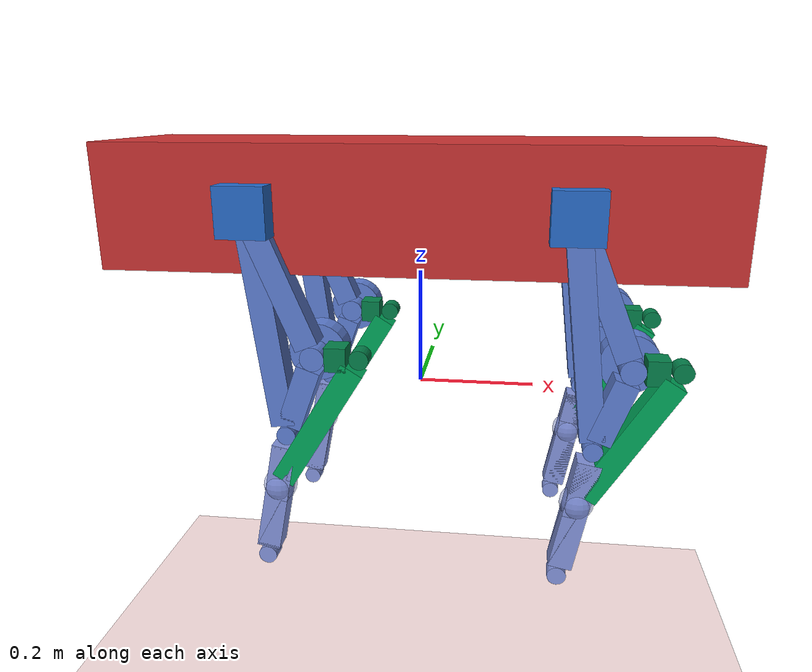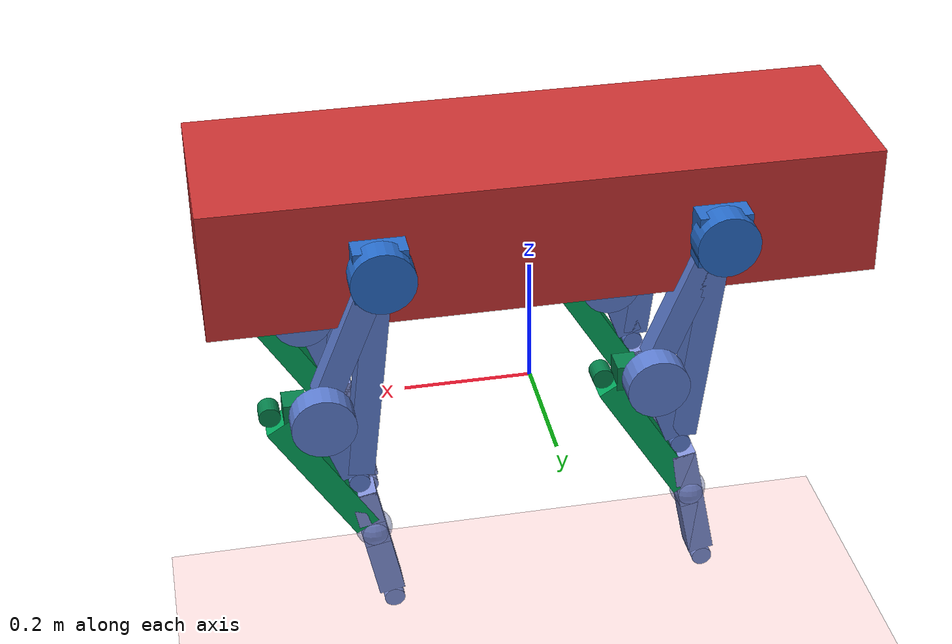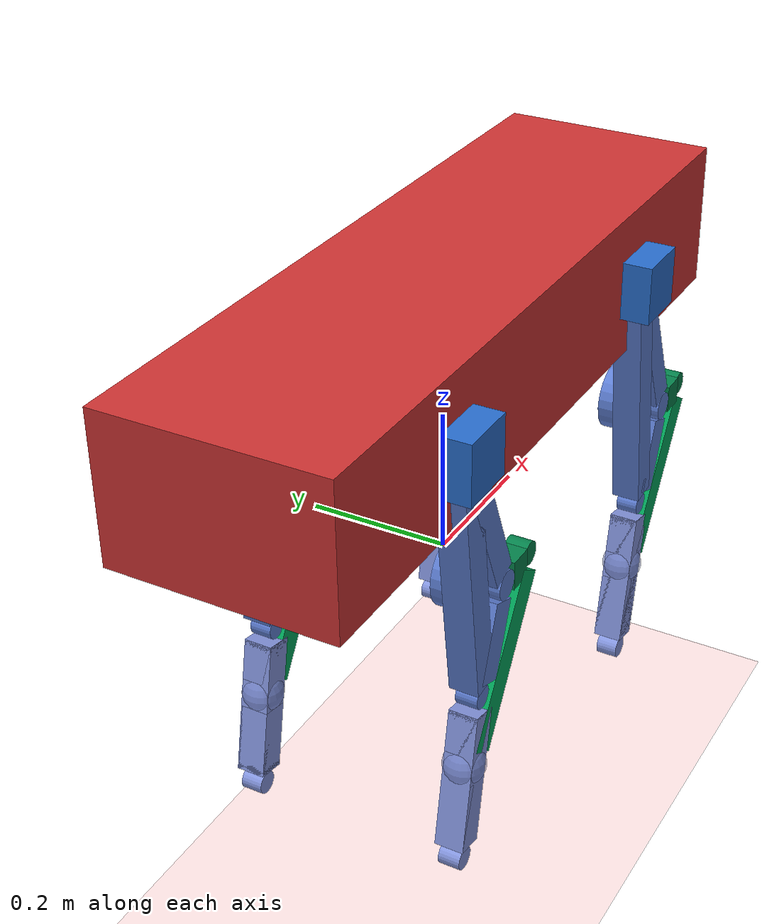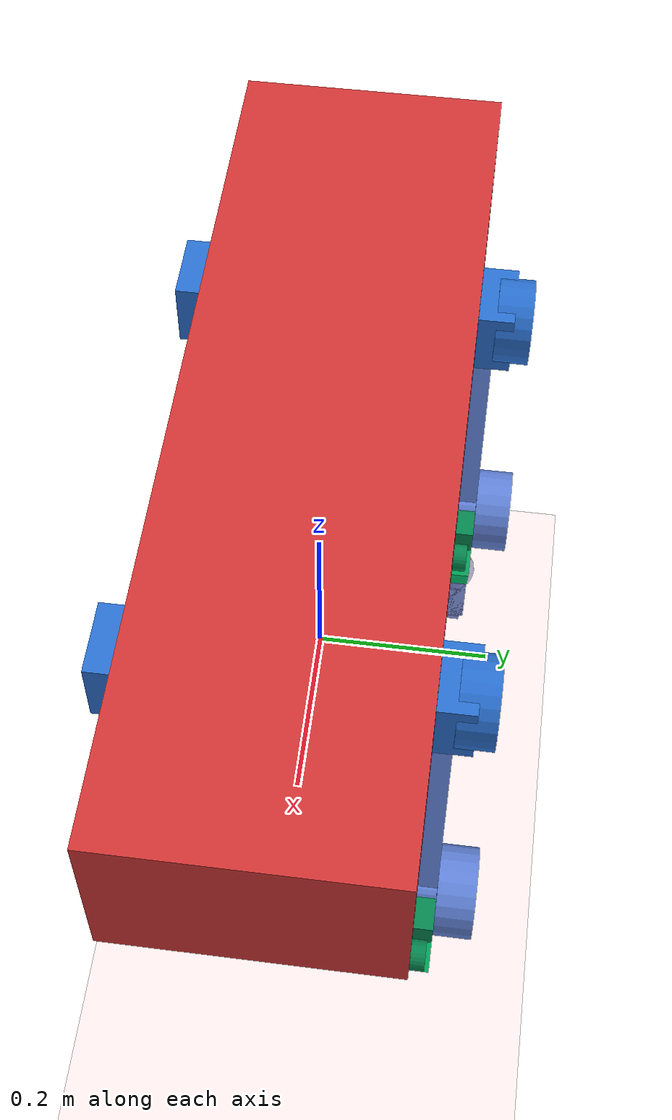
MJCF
<?xml version="1.0" encoding="utf-8"?>
<mujoco model="quadruped_torso">
  <compiler angle="radian" inertiafromgeom="true" coordinate="local" />
  <option timestep="0.01" gravity="0 0 -9.81" />
  <worldbody>
    <geom name="floor" type="plane" size="2 2 0.1" pos="0 0 -0.5" rgba="6 0.9 0.9 1" />
    <body name="torso" pos="0 0 0.32" quat="1 0 0 0">
      <geom name="torso_body" type="box" size="0.5 0.15 0.1" rgba="0.8 0.2 0.2 1" />
      <inertial pos="0 0 0" mass="2.0" diaginertia="0.1 0.2 0.1" />
      <body name="leg_front_right" pos="0.25 0.15 0">
        <geom name="G_vis0_front_right" type="box" rgba="0.1568627450980392 0.42745098039215684 0.8 1.0" contype="1" conaffinity="1" pos="0.0 0.0 0.0" quat="1.0 0.0 0.0 0.0" size="0.04 0.04 0.04" />
        <inertial pos="0.0 0.0 0.0" mass="0.08347399110019947" diaginertia="8.903892384021277e-05 8.903892384021277e-05 8.903892384021277e-05" />
        <body name="L3_front_right" pos="0.0 0.0 0.0" quat="0.06047668423188785 5.741713201658111e-17 0.998169610168691 5.741713201658111e-17">
          <joint name="Main_ground_front_right" type="hinge" axis="0 1 0" range="-3.141592653589793 3.141592653589793" damping="0.1" />
          <geom name="L3_vis0_front_right" type="box" rgba="0.37254901960784315 0.5019607843137255 0.8352941176470589 1.0" contype="1" conaffinity="1" pos="-0.0335453797116682 0.0 0.30749931402362507" quat="0.971927930023144 0.0 0.23527876835984662 0.0" size="0.019999999552965164 0.019999999552965164 0.053347601805225145" />
          <geom name="L3_vis1_front_right" type="box" rgba="0.37254901960784315 0.5019607843137255 0.8352941176470589 1.0" contype="1" conaffinity="1" pos="-0.03354537971166819 0.0 0.12113609340324624" quat="0.13466621351140315 5.242864835118275e-17 0.9908910186990804 5.242864835118275e-17" size="0.019999999552965164 0.019999999552965164 0.10569505056835027" />
          <geom name="L3_vis2_front_right" type="box" rgba="0.37254901960784315 0.5019607843137255 0.8352941176470589 1.0" contype="1" conaffinity="1" pos="-8.0396400129425e-18 0.0 0.18636322062037886" quat="1.0 0.0 0.0 0.0" size="0.019999999552965164 0.019999999552965164 0.1663632210674137" />
          <inertial pos="-0.02236 0.0 0.205" mass="0.7542480601566578" diaginertia="0.12500084161050556 0.12869753843871176 0.003897829635256627" />
          <body name="L4_front_right" pos="-1.6079280025885e-17 0.0 0.3727264412407577" quat="0.9876821263722173 0.0 0.15647369505720535 0.0">
            <joint name="Main_knee_front_right" type="hinge" axis="0 1 0" range="-3.141592653589793 3.141592653589793" damping="0.1" />
            <geom name="L4_vis0_front_right" type="box" rgba="0.5176470588235295 0.5843137254901961 0.8705882352941177 1.0" contype="1" conaffinity="1" pos="2.0816681711721685e-17 0.0 0.11718041645257968" quat="1.0 0.0 0.0 0.0" size="0.019999999552965164 0.019999999552965164 0.09718041689961451" />
            <geom name="L4_vis1_front_right" type="box" rgba="0.5176470588235295 0.5843137254901961 0.8705882352941177 1.0" contype="1" conaffinity="1" pos="3.469446951953614e-17 0.0 0.16639619136266312" quat="1.0 0.0 0.0 0.0" size="0.019999999552965164 0.019999999552965164 0.04796464198953107" />
            <geom name="L4_vis2_front_right" type="box" rgba="0.5176470588235295 0.5843137254901961 0.8705882352941177 1.0" contype="1" conaffinity="1" pos="1.3877787807814457e-17 0.0 0.04921577491008344" quat="1.0 0.0 0.0 0.0" size="0.019999999552965164 0.019999999552965164 0.02921577535711828" />
            <inertial pos="0.0 0.0 0.11093" mass="0.27110860821538063" diaginertia="0.09751211219620336 0.09769377780925784 0.00025396123848237884" />
            <body name="EE_front_right" pos="4.163336342344337e-17 0.0 0.23436083290515936" quat="0.09645554711881314 5.504063266352305e-17 0.9953372932981113 5.504063266352305e-17">
              <geom name="EE_vis0_front_right" type="sphere" rgba="0.6431372549019608 0.6666666666666666 0.9058823529411765 1.0" contype="1" conaffinity="1" pos="0.0 0.0 0.0" quat="1.0 0.0 0.0 0.0" size="0.002142857142857143" />
              <inertial pos="0.0 0.0 0.0" mass="2.979933439782622e-05" diaginertia="5.473347134294612e-11 5.473347134294612e-11 5.473347134294612e-11" />
            </body>
            <body name="Main_ee_L4Unit_front_right" pos="4.163336342344337e-17 0.0 0.23436083290515936" quat="0.06820437145077145 0.06820437145077136 0.7038097496589579 -0.703809749658958">
              <geom name="Main_ee_L4Unit_vis0_front_right" type="cylinder" rgba="0.5176470588235295 0.5843137254901961 0.8705882352941177 0.9" contype="1" conaffinity="1" size="0.016 0.015" />
              <inertial pos="0 0 0" mass="0.1" diaginertia="0.00065 0.00065 0.0008" />
            </body>
            <body name="Main_connection_2_L4Pseudo_front_right" pos="2.7755575615628914e-17 0.0 0.09843154982016689" quat="0.09645554711881314 5.504063266352305e-17 0.9953372932981113 5.504063266352305e-17">
              <joint name="Main_connection_2_L4_revolute_front_right" type="hinge" axis="0 1 0" range="-3.141592653589793 3.141592653589793" damping="0.1" />
              <geom name="Main_connection_2_L4Pseudo_vis0_front_right" type="sphere" rgba="0.5176470588235295 0.5843137254901961 0.8705882352941177 0.5" contype="1" conaffinity="1" size="0.02857142793280738" />
              <inertial pos="0 0 0" mass="0.05" diaginertia="1.632652988239212e-05 1.632652988239212e-05 1.632652988239212e-05" />
            </body>
          </body>
          <body name="Main_knee_L3Unit_front_right" pos="-1.6079280025885e-17 0.0 0.3727264412407577" quat="0.6983967292145435 0.6983967292145434 0.11064361085226583 -0.1106436108522659">
            <geom name="Main_knee_L3Unit_vis0_front_right" type="cylinder" rgba="0.37254901960784315 0.5019607843137255 0.8352941176470589 0.9" contype="1" conaffinity="1" size="0.016 0.015" />
            <inertial pos="0 0 0" mass="0.1" diaginertia="0.00065 0.00065 0.0008" />
          </body>
          <body name="L6_front_right" pos="-0.06709075942333638 0.0 0.24227218680649248" quat="0.7485759736486595 0.0 -0.6630490266005686 0.0">
            <joint name="Main_connection_1_front_right" type="hinge" axis="0 1 0" range="-3.141592653589793 3.141592653589793" damping="0.1" />
            <geom name="L6_vis0_front_right" type="box" rgba="0.01568627450980392 0.5058823529411764 0.29411764705882354 1.0" contype="1" conaffinity="1" pos="0.0 0.0 0.0375" quat="1.0 0.0 0.0 0.0" size="0.02 0.02 0.017499999999999984" />
            <inertial pos="0.0 0.0 0.0375" mass="0.04048799999999997" diaginertia="9.531549999999985e-06 9.531549999999985e-06 1.0796799999999991e-05" />
            <body name="L5_front_right" pos="0.0 0.0 0.07499999999999997" quat="0.4869558309959911 2.3664509268372513e-17 0.8734265960336929 2.3664509268372513e-17">
              <joint name="branch_1_front_right" type="hinge" axis="0 1 0" range="-3.141592653589793 3.141592653589793" damping="0.1" />
              <geom name="L5_vis0_front_right" type="box" rgba="0.0 0.6627450980392157 0.3607843137254902 1.0" contype="1" conaffinity="1" pos="-0.0 0.0 0.13766" quat="1.0 0.0 0.0 0.0" size="0.02 0.02 0.11766099892489519" />
              <inertial pos="-0.0 0.0 0.13766" mass="0.2722204871126375" diaginertia="0.001292512914843472 0.001292512914843472 7.259212989670334e-05" />
              <body name="Main_connection_2_L5Pseudo_front_right" pos="-2.0816681711721685e-17 0.0 0.2753219978497904" quat="0.273276098688512 4.216823509701657e-17 0.9619356391597031 4.216823509701657e-17">
                <geom name="Main_connection_2_L5Pseudo_vis0_front_right" type="sphere" rgba="0.0 0.6627450980392157 0.3607843137254902 0.5" contype="1" conaffinity="1" size="0.028571428571428574" />
                <inertial pos="0 0 0" mass="0.05" diaginertia="1.6326530612244903e-05 1.6326530612244903e-05 1.6326530612244903e-05" />
              </body>
            </body>
            <body name="branch_1_L6Unit_front_right" pos="0.0 0.0 0.07499999999999997" quat="0.34432977023559574 0.3443297702355957 0.6176058689241074 -0.6176058689241075">
              <geom name="branch_1_L6Unit_vis0_front_right" type="cylinder" rgba="0.01568627450980392 0.5058823529411764 0.29411764705882354 0.9" contype="1" conaffinity="1" size="0.016 0.015" />
              <inertial pos="0 0 0" mass="0.1" diaginertia="0.00065 0.00065 0.0008" />
            </body>
          </body>
          <body name="Main_connection_1_L3Actuator_front_right" pos="-0.06709075942333638 0.03999999955296517 0.24227218680649248" quat="0.5293231472002894 0.5293231472002893 -0.46884646296840177 0.4688464629684016">
            <geom name="Main_connection_1_L3Actuator_vis0_front_right" type="cylinder" rgba="0.37254901960784315 0.5019607843137255 0.8352941176470589 0.9" contype="1" conaffinity="1" size="0.048 0.02" />
            <inertial pos="0 0 0" mass="0.44" diaginertia="0.0067466666666666664 0.0067466666666666664 0.01056" />
          </body>
          <body name="Main_connection_1_L3Unit_front_right" pos="-0.06709075942333638 0.0 0.24227218680649248" quat="0.5293231472002894 0.5293231472002893 -0.46884646296840177 0.4688464629684016">
            <geom name="Main_connection_1_L3Unit_vis0_front_right" type="cylinder" rgba="0.37254901960784315 0.5019607843137255 0.8352941176470589 0.9" contype="1" conaffinity="1" size="0.019999999552965164 0.019999999552965164" />
            <inertial pos="0 0 0" mass="0.1" diaginertia="0.0008333333147068819 0.0008333333147068819 0.0009999999776482583" />
          </body>
        </body>
        <body name="Main_ground_GActuator_front_right" pos="0.0 0.03999999955296517 0.0" quat="-0.04276347352404526 -0.04276347352404564 -0.7058125001246142 0.7058125001246138">
          <geom name="Main_ground_GActuator_vis0_front_right" type="cylinder" rgba="0.1568627450980392 0.42745098039215684 0.8 0.9" contype="1" conaffinity="1" size="0.048 0.02" />
          <inertial pos="0 0 0" mass="0.44" diaginertia="0.0067466666666666664 0.0067466666666666664 0.01056" />
        </body>
        <body name="Main_ground_GUnit_front_right" pos="0.0 0.0 0.0" quat="-0.04276347352404526 -0.04276347352404564 -0.7058125001246142 0.7058125001246138">
          <geom name="Main_ground_GUnit_vis0_front_right" type="cylinder" rgba="0.1568627450980392 0.42745098039215684 0.8 0.9" contype="1" conaffinity="1" size="0.019999999552965164 0.019999999552965164" />
          <inertial pos="0 0 0" mass="0.1" diaginertia="0.0008333333147068819 0.0008333333147068819 0.0009999999776482583" />
        </body>
      </body>
      <body name="leg_front_left" pos="0.25 -0.15 0">
        <geom name="G_vis0_front_left" type="box" rgba="0.1568627450980392 0.42745098039215684 0.8 1.0" contype="1" conaffinity="1" pos="0.0 0.0 0.0" quat="1.0 0.0 0.0 0.0" size="0.04 0.04 0.04" />
        <inertial pos="0.0 0.0 0.0" mass="0.08347399110019947" diaginertia="8.903892384021277e-05 8.903892384021277e-05 8.903892384021277e-05" />
        <body name="L3_front_left" pos="0.0 0.0 0.0" quat="0.06047668423188785 5.741713201658111e-17 0.998169610168691 5.741713201658111e-17">
          <joint name="Main_ground_front_left" type="hinge" axis="0 1 0" range="-3.141592653589793 3.141592653589793" damping="0.1" />
          <geom name="L3_vis0_front_left" type="box" rgba="0.37254901960784315 0.5019607843137255 0.8352941176470589 1.0" contype="1" conaffinity="1" pos="-0.0335453797116682 0.0 0.30749931402362507" quat="0.971927930023144 0.0 0.23527876835984662 0.0" size="0.019999999552965164 0.019999999552965164 0.053347601805225145" />
          <geom name="L3_vis1_front_left" type="box" rgba="0.37254901960784315 0.5019607843137255 0.8352941176470589 1.0" contype="1" conaffinity="1" pos="-0.03354537971166819 0.0 0.12113609340324624" quat="0.13466621351140315 5.242864835118275e-17 0.9908910186990804 5.242864835118275e-17" size="0.019999999552965164 0.019999999552965164 0.10569505056835027" />
          <geom name="L3_vis2_front_left" type="box" rgba="0.37254901960784315 0.5019607843137255 0.8352941176470589 1.0" contype="1" conaffinity="1" pos="-8.0396400129425e-18 0.0 0.18636322062037886" quat="1.0 0.0 0.0 0.0" size="0.019999999552965164 0.019999999552965164 0.1663632210674137" />
          <inertial pos="-0.02236 0.0 0.205" mass="0.7542480601566578" diaginertia="0.12500084161050556 0.12869753843871176 0.003897829635256627" />
          <body name="L4_front_left" pos="-1.6079280025885e-17 0.0 0.3727264412407577" quat="0.9876821263722173 0.0 0.15647369505720535 0.0">
            <joint name="Main_knee_front_left" type="hinge" axis="0 1 0" range="-3.141592653589793 3.141592653589793" damping="0.1" />
            <geom name="L4_vis0_front_left" type="box" rgba="0.5176470588235295 0.5843137254901961 0.8705882352941177 1.0" contype="1" conaffinity="1" pos="2.0816681711721685e-17 0.0 0.11718041645257968" quat="1.0 0.0 0.0 0.0" size="0.019999999552965164 0.019999999552965164 0.09718041689961451" />
            <geom name="L4_vis1_front_left" type="box" rgba="0.5176470588235295 0.5843137254901961 0.8705882352941177 1.0" contype="1" conaffinity="1" pos="3.469446951953614e-17 0.0 0.16639619136266312" quat="1.0 0.0 0.0 0.0" size="0.019999999552965164 0.019999999552965164 0.04796464198953107" />
            <geom name="L4_vis2_front_left" type="box" rgba="0.5176470588235295 0.5843137254901961 0.8705882352941177 1.0" contype="1" conaffinity="1" pos="1.3877787807814457e-17 0.0 0.04921577491008344" quat="1.0 0.0 0.0 0.0" size="0.019999999552965164 0.019999999552965164 0.02921577535711828" />
            <inertial pos="0.0 0.0 0.11093" mass="0.27110860821538063" diaginertia="0.09751211219620336 0.09769377780925784 0.00025396123848237884" />
            <body name="EE_front_left" pos="4.163336342344337e-17 0.0 0.23436083290515936" quat="0.09645554711881314 5.504063266352305e-17 0.9953372932981113 5.504063266352305e-17">
              <geom name="EE_vis0_front_left" type="sphere" rgba="0.6431372549019608 0.6666666666666666 0.9058823529411765 1.0" contype="1" conaffinity="1" pos="0.0 0.0 0.0" quat="1.0 0.0 0.0 0.0" size="0.002142857142857143" />
              <inertial pos="0.0 0.0 0.0" mass="2.979933439782622e-05" diaginertia="5.473347134294612e-11 5.473347134294612e-11 5.473347134294612e-11" />
            </body>
            <body name="Main_ee_L4Unit_front_left" pos="4.163336342344337e-17 0.0 0.23436083290515936" quat="0.06820437145077145 0.06820437145077136 0.7038097496589579 -0.703809749658958">
              <geom name="Main_ee_L4Unit_vis0_front_left" type="cylinder" rgba="0.5176470588235295 0.5843137254901961 0.8705882352941177 0.9" contype="1" conaffinity="1" size="0.016 0.015" />
              <inertial pos="0 0 0" mass="0.1" diaginertia="0.00065 0.00065 0.0008" />
            </body>
            <body name="Main_connection_2_L4Pseudo_front_left" pos="2.7755575615628914e-17 0.0 0.09843154982016689" quat="0.09645554711881314 5.504063266352305e-17 0.9953372932981113 5.504063266352305e-17">
              <joint name="Main_connection_2_L4_revolute_front_left" type="hinge" axis="0 1 0" range="-3.141592653589793 3.141592653589793" damping="0.1" />
              <geom name="Main_connection_2_L4Pseudo_vis0_front_left" type="sphere" rgba="0.5176470588235295 0.5843137254901961 0.8705882352941177 0.5" contype="1" conaffinity="1" size="0.02857142793280738" />
              <inertial pos="0 0 0" mass="0.05" diaginertia="1.632652988239212e-05 1.632652988239212e-05 1.632652988239212e-05" />
            </body>
          </body>
          <body name="Main_knee_L3Unit_front_left" pos="-1.6079280025885e-17 0.0 0.3727264412407577" quat="0.6983967292145435 0.6983967292145434 0.11064361085226583 -0.1106436108522659">
            <geom name="Main_knee_L3Unit_vis0_front_left" type="cylinder" rgba="0.37254901960784315 0.5019607843137255 0.8352941176470589 0.9" contype="1" conaffinity="1" size="0.016 0.015" />
            <inertial pos="0 0 0" mass="0.1" diaginertia="0.00065 0.00065 0.0008" />
          </body>
          <body name="L6_front_left" pos="-0.06709075942333638 0.0 0.24227218680649248" quat="0.7485759736486595 0.0 -0.6630490266005686 0.0">
            <joint name="Main_connection_1_front_left" type="hinge" axis="0 1 0" range="-3.141592653589793 3.141592653589793" damping="0.1" />
            <geom name="L6_vis0_front_left" type="box" rgba="0.01568627450980392 0.5058823529411764 0.29411764705882354 1.0" contype="1" conaffinity="1" pos="0.0 0.0 0.0375" quat="1.0 0.0 0.0 0.0" size="0.02 0.02 0.017499999999999984" />
            <inertial pos="0.0 0.0 0.0375" mass="0.04048799999999997" diaginertia="9.531549999999985e-06 9.531549999999985e-06 1.0796799999999991e-05" />
            <body name="L5_front_left" pos="0.0 0.0 0.07499999999999997" quat="0.4869558309959911 2.3664509268372513e-17 0.8734265960336929 2.3664509268372513e-17">
              <joint name="branch_1_front_left" type="hinge" axis="0 1 0" range="-3.141592653589793 3.141592653589793" damping="0.1" />
              <geom name="L5_vis0_front_left" type="box" rgba="0.0 0.6627450980392157 0.3607843137254902 1.0" contype="1" conaffinity="1" pos="-0.0 0.0 0.13766" quat="1.0 0.0 0.0 0.0" size="0.02 0.02 0.11766099892489519" />
              <inertial pos="-0.0 0.0 0.13766" mass="0.2722204871126375" diaginertia="0.001292512914843472 0.001292512914843472 7.259212989670334e-05" />
              <body name="Main_connection_2_L5Pseudo_front_left" pos="-2.0816681711721685e-17 0.0 0.2753219978497904" quat="0.273276098688512 4.216823509701657e-17 0.9619356391597031 4.216823509701657e-17">
                <geom name="Main_connection_2_L5Pseudo_vis0_front_left" type="sphere" rgba="0.0 0.6627450980392157 0.3607843137254902 0.5" contype="1" conaffinity="1" size="0.028571428571428574" />
                <inertial pos="0 0 0" mass="0.05" diaginertia="1.6326530612244903e-05 1.6326530612244903e-05 1.6326530612244903e-05" />
              </body>
            </body>
            <body name="branch_1_L6Unit_front_left" pos="0.0 0.0 0.07499999999999997" quat="0.34432977023559574 0.3443297702355957 0.6176058689241074 -0.6176058689241075">
              <geom name="branch_1_L6Unit_vis0_front_left" type="cylinder" rgba="0.01568627450980392 0.5058823529411764 0.29411764705882354 0.9" contype="1" conaffinity="1" size="0.016 0.015" />
              <inertial pos="0 0 0" mass="0.1" diaginertia="0.00065 0.00065 0.0008" />
            </body>
          </body>
          <body name="Main_connection_1_L3Actuator_front_left" pos="-0.06709075942333638 0.03999999955296517 0.24227218680649248" quat="0.5293231472002894 0.5293231472002893 -0.46884646296840177 0.4688464629684016">
            <geom name="Main_connection_1_L3Actuator_vis0_front_left" type="cylinder" rgba="0.37254901960784315 0.5019607843137255 0.8352941176470589 0.9" contype="1" conaffinity="1" size="0.048 0.02" />
            <inertial pos="0 0 0" mass="0.44" diaginertia="0.0067466666666666664 0.0067466666666666664 0.01056" />
          </body>
          <body name="Main_connection_1_L3Unit_front_left" pos="-0.06709075942333638 0.0 0.24227218680649248" quat="0.5293231472002894 0.5293231472002893 -0.46884646296840177 0.4688464629684016">
            <geom name="Main_connection_1_L3Unit_vis0_front_left" type="cylinder" rgba="0.37254901960784315 0.5019607843137255 0.8352941176470589 0.9" contype="1" conaffinity="1" size="0.019999999552965164 0.019999999552965164" />
            <inertial pos="0 0 0" mass="0.1" diaginertia="0.0008333333147068819 0.0008333333147068819 0.0009999999776482583" />
          </body>
        </body>
        <body name="Main_ground_GActuator_front_left" pos="0.0 0.03999999955296517 0.0" quat="-0.04276347352404526 -0.04276347352404564 -0.7058125001246142 0.7058125001246138">
          <geom name="Main_ground_GActuator_vis0_front_left" type="cylinder" rgba="0.1568627450980392 0.42745098039215684 0.8 0.9" contype="1" conaffinity="1" size="0.048 0.02" />
          <inertial pos="0 0 0" mass="0.44" diaginertia="0.0067466666666666664 0.0067466666666666664 0.01056" />
        </body>
        <body name="Main_ground_GUnit_front_left" pos="0.0 0.0 0.0" quat="-0.04276347352404526 -0.04276347352404564 -0.7058125001246142 0.7058125001246138">
          <geom name="Main_ground_GUnit_vis0_front_left" type="cylinder" rgba="0.1568627450980392 0.42745098039215684 0.8 0.9" contype="1" conaffinity="1" size="0.019999999552965164 0.019999999552965164" />
          <inertial pos="0 0 0" mass="0.1" diaginertia="0.0008333333147068819 0.0008333333147068819 0.0009999999776482583" />
        </body>
      </body>
      <body name="leg_rear_right" pos="-0.25 0.15 0">
        <geom name="G_vis0_rear_right" type="box" rgba="0.1568627450980392 0.42745098039215684 0.8 1.0" contype="1" conaffinity="1" pos="0.0 0.0 0.0" quat="1.0 0.0 0.0 0.0" size="0.04 0.04 0.04" />
        <inertial pos="0.0 0.0 0.0" mass="0.08347399110019947" diaginertia="8.903892384021277e-05 8.903892384021277e-05 8.903892384021277e-05" />
        <body name="L3_rear_right" pos="0.0 0.0 0.0" quat="0.06047668423188785 5.741713201658111e-17 0.998169610168691 5.741713201658111e-17">
          <joint name="Main_ground_rear_right" type="hinge" axis="0 1 0" range="-3.141592653589793 3.141592653589793" damping="0.1" />
          <geom name="L3_vis0_rear_right" type="box" rgba="0.37254901960784315 0.5019607843137255 0.8352941176470589 1.0" contype="1" conaffinity="1" pos="-0.0335453797116682 0.0 0.30749931402362507" quat="0.971927930023144 0.0 0.23527876835984662 0.0" size="0.019999999552965164 0.019999999552965164 0.053347601805225145" />
          <geom name="L3_vis1_rear_right" type="box" rgba="0.37254901960784315 0.5019607843137255 0.8352941176470589 1.0" contype="1" conaffinity="1" pos="-0.03354537971166819 0.0 0.12113609340324624" quat="0.13466621351140315 5.242864835118275e-17 0.9908910186990804 5.242864835118275e-17" size="0.019999999552965164 0.019999999552965164 0.10569505056835027" />
          <geom name="L3_vis2_rear_right" type="box" rgba="0.37254901960784315 0.5019607843137255 0.8352941176470589 1.0" contype="1" conaffinity="1" pos="-8.0396400129425e-18 0.0 0.18636322062037886" quat="1.0 0.0 0.0 0.0" size="0.019999999552965164 0.019999999552965164 0.1663632210674137" />
          <inertial pos="-0.02236 0.0 0.205" mass="0.7542480601566578" diaginertia="0.12500084161050556 0.12869753843871176 0.003897829635256627" />
          <body name="L4_rear_right" pos="-1.6079280025885e-17 0.0 0.3727264412407577" quat="0.9876821263722173 0.0 0.15647369505720535 0.0">
            <joint name="Main_knee_rear_right" type="hinge" axis="0 1 0" range="-3.141592653589793 3.141592653589793" damping="0.1" />
            <geom name="L4_vis0_rear_right" type="box" rgba="0.5176470588235295 0.5843137254901961 0.8705882352941177 1.0" contype="1" conaffinity="1" pos="2.0816681711721685e-17 0.0 0.11718041645257968" quat="1.0 0.0 0.0 0.0" size="0.019999999552965164 0.019999999552965164 0.09718041689961451" />
            <geom name="L4_vis1_rear_right" type="box" rgba="0.5176470588235295 0.5843137254901961 0.8705882352941177 1.0" contype="1" conaffinity="1" pos="3.469446951953614e-17 0.0 0.16639619136266312" quat="1.0 0.0 0.0 0.0" size="0.019999999552965164 0.019999999552965164 0.04796464198953107" />
            <geom name="L4_vis2_rear_right" type="box" rgba="0.5176470588235295 0.5843137254901961 0.8705882352941177 1.0" contype="1" conaffinity="1" pos="1.3877787807814457e-17 0.0 0.04921577491008344" quat="1.0 0.0 0.0 0.0" size="0.019999999552965164 0.019999999552965164 0.02921577535711828" />
            <inertial pos="0.0 0.0 0.11093" mass="0.27110860821538063" diaginertia="0.09751211219620336 0.09769377780925784 0.00025396123848237884" />
            <body name="EE_rear_right" pos="4.163336342344337e-17 0.0 0.23436083290515936" quat="0.09645554711881314 5.504063266352305e-17 0.9953372932981113 5.504063266352305e-17">
              <geom name="EE_vis0_rear_right" type="sphere" rgba="0.6431372549019608 0.6666666666666666 0.9058823529411765 1.0" contype="1" conaffinity="1" pos="0.0 0.0 0.0" quat="1.0 0.0 0.0 0.0" size="0.002142857142857143" />
              <inertial pos="0.0 0.0 0.0" mass="2.979933439782622e-05" diaginertia="5.473347134294612e-11 5.473347134294612e-11 5.473347134294612e-11" />
            </body>
            <body name="Main_ee_L4Unit_rear_right" pos="4.163336342344337e-17 0.0 0.23436083290515936" quat="0.06820437145077145 0.06820437145077136 0.7038097496589579 -0.703809749658958">
              <geom name="Main_ee_L4Unit_vis0_rear_right" type="cylinder" rgba="0.5176470588235295 0.5843137254901961 0.8705882352941177 0.9" contype="1" conaffinity="1" size="0.016 0.015" />
              <inertial pos="0 0 0" mass="0.1" diaginertia="0.00065 0.00065 0.0008" />
            </body>
            <body name="Main_connection_2_L4Pseudo_rear_right" pos="2.7755575615628914e-17 0.0 0.09843154982016689" quat="0.09645554711881314 5.504063266352305e-17 0.9953372932981113 5.504063266352305e-17">
              <joint name="Main_connection_2_L4_revolute_rear_right" type="hinge" axis="0 1 0" range="-3.141592653589793 3.141592653589793" damping="0.1" />
              <geom name="Main_connection_2_L4Pseudo_vis0_rear_right" type="sphere" rgba="0.5176470588235295 0.5843137254901961 0.8705882352941177 0.5" contype="1" conaffinity="1" size="0.02857142793280738" />
              <inertial pos="0 0 0" mass="0.05" diaginertia="1.632652988239212e-05 1.632652988239212e-05 1.632652988239212e-05" />
            </body>
          </body>
          <body name="Main_knee_L3Unit_rear_right" pos="-1.6079280025885e-17 0.0 0.3727264412407577" quat="0.6983967292145435 0.6983967292145434 0.11064361085226583 -0.1106436108522659">
            <geom name="Main_knee_L3Unit_vis0_rear_right" type="cylinder" rgba="0.37254901960784315 0.5019607843137255 0.8352941176470589 0.9" contype="1" conaffinity="1" size="0.016 0.015" />
            <inertial pos="0 0 0" mass="0.1" diaginertia="0.00065 0.00065 0.0008" />
          </body>
          <body name="L6_rear_right" pos="-0.06709075942333638 0.0 0.24227218680649248" quat="0.7485759736486595 0.0 -0.6630490266005686 0.0">
            <joint name="Main_connection_1_rear_right" type="hinge" axis="0 1 0" range="-3.141592653589793 3.141592653589793" damping="0.1" />
            <geom name="L6_vis0_rear_right" type="box" rgba="0.01568627450980392 0.5058823529411764 0.29411764705882354 1.0" contype="1" conaffinity="1" pos="0.0 0.0 0.0375" quat="1.0 0.0 0.0 0.0" size="0.02 0.02 0.017499999999999984" />
            <inertial pos="0.0 0.0 0.0375" mass="0.04048799999999997" diaginertia="9.531549999999985e-06 9.531549999999985e-06 1.0796799999999991e-05" />
            <body name="L5_rear_right" pos="0.0 0.0 0.07499999999999997" quat="0.4869558309959911 2.3664509268372513e-17 0.8734265960336929 2.3664509268372513e-17">
              <joint name="branch_1_rear_right" type="hinge" axis="0 1 0" range="-3.141592653589793 3.141592653589793" damping="0.1" />
              <geom name="L5_vis0_rear_right" type="box" rgba="0.0 0.6627450980392157 0.3607843137254902 1.0" contype="1" conaffinity="1" pos="-0.0 0.0 0.13766" quat="1.0 0.0 0.0 0.0" size="0.02 0.02 0.11766099892489519" />
              <inertial pos="-0.0 0.0 0.13766" mass="0.2722204871126375" diaginertia="0.001292512914843472 0.001292512914843472 7.259212989670334e-05" />
              <body name="Main_connection_2_L5Pseudo_rear_right" pos="-2.0816681711721685e-17 0.0 0.2753219978497904" quat="0.273276098688512 4.216823509701657e-17 0.9619356391597031 4.216823509701657e-17">
                <geom name="Main_connection_2_L5Pseudo_vis0_rear_right" type="sphere" rgba="0.0 0.6627450980392157 0.3607843137254902 0.5" contype="1" conaffinity="1" size="0.028571428571428574" />
                <inertial pos="0 0 0" mass="0.05" diaginertia="1.6326530612244903e-05 1.6326530612244903e-05 1.6326530612244903e-05" />
              </body>
            </body>
            <body name="branch_1_L6Unit_rear_right" pos="0.0 0.0 0.07499999999999997" quat="0.34432977023559574 0.3443297702355957 0.6176058689241074 -0.6176058689241075">
              <geom name="branch_1_L6Unit_vis0_rear_right" type="cylinder" rgba="0.01568627450980392 0.5058823529411764 0.29411764705882354 0.9" contype="1" conaffinity="1" size="0.016 0.015" />
              <inertial pos="0 0 0" mass="0.1" diaginertia="0.00065 0.00065 0.0008" />
            </body>
          </body>
          <body name="Main_connection_1_L3Actuator_rear_right" pos="-0.06709075942333638 0.03999999955296517 0.24227218680649248" quat="0.5293231472002894 0.5293231472002893 -0.46884646296840177 0.4688464629684016">
            <geom name="Main_connection_1_L3Actuator_vis0_rear_right" type="cylinder" rgba="0.37254901960784315 0.5019607843137255 0.8352941176470589 0.9" contype="1" conaffinity="1" size="0.048 0.02" />
            <inertial pos="0 0 0" mass="0.44" diaginertia="0.0067466666666666664 0.0067466666666666664 0.01056" />
          </body>
          <body name="Main_connection_1_L3Unit_rear_right" pos="-0.06709075942333638 0.0 0.24227218680649248" quat="0.5293231472002894 0.5293231472002893 -0.46884646296840177 0.4688464629684016">
            <geom name="Main_connection_1_L3Unit_vis0_rear_right" type="cylinder" rgba="0.37254901960784315 0.5019607843137255 0.8352941176470589 0.9" contype="1" conaffinity="1" size="0.019999999552965164 0.019999999552965164" />
            <inertial pos="0 0 0" mass="0.1" diaginertia="0.0008333333147068819 0.0008333333147068819 0.0009999999776482583" />
          </body>
        </body>
        <body name="Main_ground_GActuator_rear_right" pos="0.0 0.03999999955296517 0.0" quat="-0.04276347352404526 -0.04276347352404564 -0.7058125001246142 0.7058125001246138">
          <geom name="Main_ground_GActuator_vis0_rear_right" type="cylinder" rgba="0.1568627450980392 0.42745098039215684 0.8 0.9" contype="1" conaffinity="1" size="0.048 0.02" />
          <inertial pos="0 0 0" mass="0.44" diaginertia="0.0067466666666666664 0.0067466666666666664 0.01056" />
        </body>
        <body name="Main_ground_GUnit_rear_right" pos="0.0 0.0 0.0" quat="-0.04276347352404526 -0.04276347352404564 -0.7058125001246142 0.7058125001246138">
          <geom name="Main_ground_GUnit_vis0_rear_right" type="cylinder" rgba="0.1568627450980392 0.42745098039215684 0.8 0.9" contype="1" conaffinity="1" size="0.019999999552965164 0.019999999552965164" />
          <inertial pos="0 0 0" mass="0.1" diaginertia="0.0008333333147068819 0.0008333333147068819 0.0009999999776482583" />
        </body>
      </body>
      <body name="leg_rear_left" pos="-0.25 -0.15 0">
        <geom name="G_vis0_rear_left" type="box" rgba="0.1568627450980392 0.42745098039215684 0.8 1.0" contype="1" conaffinity="1" pos="0.0 0.0 0.0" quat="1.0 0.0 0.0 0.0" size="0.04 0.04 0.04" />
        <inertial pos="0.0 0.0 0.0" mass="0.08347399110019947" diaginertia="8.903892384021277e-05 8.903892384021277e-05 8.903892384021277e-05" />
        <body name="L3_rear_left" pos="0.0 0.0 0.0" quat="0.06047668423188785 5.741713201658111e-17 0.998169610168691 5.741713201658111e-17">
          <joint name="Main_ground_rear_left" type="hinge" axis="0 1 0" range="-3.141592653589793 3.141592653589793" damping="0.1" />
          <geom name="L3_vis0_rear_left" type="box" rgba="0.37254901960784315 0.5019607843137255 0.8352941176470589 1.0" contype="1" conaffinity="1" pos="-0.0335453797116682 0.0 0.30749931402362507" quat="0.971927930023144 0.0 0.23527876835984662 0.0" size="0.019999999552965164 0.019999999552965164 0.053347601805225145" />
          <geom name="L3_vis1_rear_left" type="box" rgba="0.37254901960784315 0.5019607843137255 0.8352941176470589 1.0" contype="1" conaffinity="1" pos="-0.03354537971166819 0.0 0.12113609340324624" quat="0.13466621351140315 5.242864835118275e-17 0.9908910186990804 5.242864835118275e-17" size="0.019999999552965164 0.019999999552965164 0.10569505056835027" />
          <geom name="L3_vis2_rear_left" type="box" rgba="0.37254901960784315 0.5019607843137255 0.8352941176470589 1.0" contype="1" conaffinity="1" pos="-8.0396400129425e-18 0.0 0.18636322062037886" quat="1.0 0.0 0.0 0.0" size="0.019999999552965164 0.019999999552965164 0.1663632210674137" />
          <inertial pos="-0.02236 0.0 0.205" mass="0.7542480601566578" diaginertia="0.12500084161050556 0.12869753843871176 0.003897829635256627" />
          <body name="L4_rear_left" pos="-1.6079280025885e-17 0.0 0.3727264412407577" quat="0.9876821263722173 0.0 0.15647369505720535 0.0">
            <joint name="Main_knee_rear_left" type="hinge" axis="0 1 0" range="-3.141592653589793 3.141592653589793" damping="0.1" />
            <geom name="L4_vis0_rear_left" type="box" rgba="0.5176470588235295 0.5843137254901961 0.8705882352941177 1.0" contype="1" conaffinity="1" pos="2.0816681711721685e-17 0.0 0.11718041645257968" quat="1.0 0.0 0.0 0.0" size="0.019999999552965164 0.019999999552965164 0.09718041689961451" />
            <geom name="L4_vis1_rear_left" type="box" rgba="0.5176470588235295 0.5843137254901961 0.8705882352941177 1.0" contype="1" conaffinity="1" pos="3.469446951953614e-17 0.0 0.16639619136266312" quat="1.0 0.0 0.0 0.0" size="0.019999999552965164 0.019999999552965164 0.04796464198953107" />
            <geom name="L4_vis2_rear_left" type="box" rgba="0.5176470588235295 0.5843137254901961 0.8705882352941177 1.0" contype="1" conaffinity="1" pos="1.3877787807814457e-17 0.0 0.04921577491008344" quat="1.0 0.0 0.0 0.0" size="0.019999999552965164 0.019999999552965164 0.02921577535711828" />
            <inertial pos="0.0 0.0 0.11093" mass="0.27110860821538063" diaginertia="0.09751211219620336 0.09769377780925784 0.00025396123848237884" />
            <body name="EE_rear_left" pos="4.163336342344337e-17 0.0 0.23436083290515936" quat="0.09645554711881314 5.504063266352305e-17 0.9953372932981113 5.504063266352305e-17">
              <geom name="EE_vis0_rear_left" type="sphere" rgba="0.6431372549019608 0.6666666666666666 0.9058823529411765 1.0" contype="1" conaffinity="1" pos="0.0 0.0 0.0" quat="1.0 0.0 0.0 0.0" size="0.002142857142857143" />
              <inertial pos="0.0 0.0 0.0" mass="2.979933439782622e-05" diaginertia="5.473347134294612e-11 5.473347134294612e-11 5.473347134294612e-11" />
            </body>
            <body name="Main_ee_L4Unit_rear_left" pos="4.163336342344337e-17 0.0 0.23436083290515936" quat="0.06820437145077145 0.06820437145077136 0.7038097496589579 -0.703809749658958">
              <geom name="Main_ee_L4Unit_vis0_rear_left" type="cylinder" rgba="0.5176470588235295 0.5843137254901961 0.8705882352941177 0.9" contype="1" conaffinity="1" size="0.016 0.015" />
              <inertial pos="0 0 0" mass="0.1" diaginertia="0.00065 0.00065 0.0008" />
            </body>
            <body name="Main_connection_2_L4Pseudo_rear_left" pos="2.7755575615628914e-17 0.0 0.09843154982016689" quat="0.09645554711881314 5.504063266352305e-17 0.9953372932981113 5.504063266352305e-17">
              <joint name="Main_connection_2_L4_revolute_rear_left" type="hinge" axis="0 1 0" range="-3.141592653589793 3.141592653589793" damping="0.1" />
              <geom name="Main_connection_2_L4Pseudo_vis0_rear_left" type="sphere" rgba="0.5176470588235295 0.5843137254901961 0.8705882352941177 0.5" contype="1" conaffinity="1" size="0.02857142793280738" />
              <inertial pos="0 0 0" mass="0.05" diaginertia="1.632652988239212e-05 1.632652988239212e-05 1.632652988239212e-05" />
            </body>
          </body>
          <body name="Main_knee_L3Unit_rear_left" pos="-1.6079280025885e-17 0.0 0.3727264412407577" quat="0.6983967292145435 0.6983967292145434 0.11064361085226583 -0.1106436108522659">
            <geom name="Main_knee_L3Unit_vis0_rear_left" type="cylinder" rgba="0.37254901960784315 0.5019607843137255 0.8352941176470589 0.9" contype="1" conaffinity="1" size="0.016 0.015" />
            <inertial pos="0 0 0" mass="0.1" diaginertia="0.00065 0.00065 0.0008" />
          </body>
          <body name="L6_rear_left" pos="-0.06709075942333638 0.0 0.24227218680649248" quat="0.7485759736486595 0.0 -0.6630490266005686 0.0">
            <joint name="Main_connection_1_rear_left" type="hinge" axis="0 1 0" range="-3.141592653589793 3.141592653589793" damping="0.1" />
            <geom name="L6_vis0_rear_left" type="box" rgba="0.01568627450980392 0.5058823529411764 0.29411764705882354 1.0" contype="1" conaffinity="1" pos="0.0 0.0 0.0375" quat="1.0 0.0 0.0 0.0" size="0.02 0.02 0.017499999999999984" />
            <inertial pos="0.0 0.0 0.0375" mass="0.04048799999999997" diaginertia="9.531549999999985e-06 9.531549999999985e-06 1.0796799999999991e-05" />
            <body name="L5_rear_left" pos="0.0 0.0 0.07499999999999997" quat="0.4869558309959911 2.3664509268372513e-17 0.8734265960336929 2.3664509268372513e-17">
              <joint name="branch_1_rear_left" type="hinge" axis="0 1 0" range="-3.141592653589793 3.141592653589793" damping="0.1" />
              <geom name="L5_vis0_rear_left" type="box" rgba="0.0 0.6627450980392157 0.3607843137254902 1.0" contype="1" conaffinity="1" pos="-0.0 0.0 0.13766" quat="1.0 0.0 0.0 0.0" size="0.02 0.02 0.11766099892489519" />
              <inertial pos="-0.0 0.0 0.13766" mass="0.2722204871126375" diaginertia="0.001292512914843472 0.001292512914843472 7.259212989670334e-05" />
              <body name="Main_connection_2_L5Pseudo_rear_left" pos="-2.0816681711721685e-17 0.0 0.2753219978497904" quat="0.273276098688512 4.216823509701657e-17 0.9619356391597031 4.216823509701657e-17">
                <geom name="Main_connection_2_L5Pseudo_vis0_rear_left" type="sphere" rgba="0.0 0.6627450980392157 0.3607843137254902 0.5" contype="1" conaffinity="1" size="0.028571428571428574" />
                <inertial pos="0 0 0" mass="0.05" diaginertia="1.6326530612244903e-05 1.6326530612244903e-05 1.6326530612244903e-05" />
              </body>
            </body>
            <body name="branch_1_L6Unit_rear_left" pos="0.0 0.0 0.07499999999999997" quat="0.34432977023559574 0.3443297702355957 0.6176058689241074 -0.6176058689241075">
              <geom name="branch_1_L6Unit_vis0_rear_left" type="cylinder" rgba="0.01568627450980392 0.5058823529411764 0.29411764705882354 0.9" contype="1" conaffinity="1" size="0.016 0.015" />
              <inertial pos="0 0 0" mass="0.1" diaginertia="0.00065 0.00065 0.0008" />
            </body>
          </body>
          <body name="Main_connection_1_L3Actuator_rear_left" pos="-0.06709075942333638 0.03999999955296517 0.24227218680649248" quat="0.5293231472002894 0.5293231472002893 -0.46884646296840177 0.4688464629684016">
            <geom name="Main_connection_1_L3Actuator_vis0_rear_left" type="cylinder" rgba="0.37254901960784315 0.5019607843137255 0.8352941176470589 0.9" contype="1" conaffinity="1" size="0.048 0.02" />
            <inertial pos="0 0 0" mass="0.44" diaginertia="0.0067466666666666664 0.0067466666666666664 0.01056" />
          </body>
          <body name="Main_connection_1_L3Unit_rear_left" pos="-0.06709075942333638 0.0 0.24227218680649248" quat="0.5293231472002894 0.5293231472002893 -0.46884646296840177 0.4688464629684016">
            <geom name="Main_connection_1_L3Unit_vis0_rear_left" type="cylinder" rgba="0.37254901960784315 0.5019607843137255 0.8352941176470589 0.9" contype="1" conaffinity="1" size="0.019999999552965164 0.019999999552965164" />
            <inertial pos="0 0 0" mass="0.1" diaginertia="0.0008333333147068819 0.0008333333147068819 0.0009999999776482583" />
          </body>
        </body>
        <body name="Main_ground_GActuator_rear_left" pos="0.0 0.03999999955296517 0.0" quat="-0.04276347352404526 -0.04276347352404564 -0.7058125001246142 0.7058125001246138">
          <geom name="Main_ground_GActuator_vis0_rear_left" type="cylinder" rgba="0.1568627450980392 0.42745098039215684 0.8 0.9" contype="1" conaffinity="1" size="0.048 0.02" />
          <inertial pos="0 0 0" mass="0.44" diaginertia="0.0067466666666666664 0.0067466666666666664 0.01056" />
        </body>
        <body name="Main_ground_GUnit_rear_left" pos="0.0 0.0 0.0" quat="-0.04276347352404526 -0.04276347352404564 -0.7058125001246142 0.7058125001246138">
          <geom name="Main_ground_GUnit_vis0_rear_left" type="cylinder" rgba="0.1568627450980392 0.42745098039215684 0.8 0.9" contype="1" conaffinity="1" size="0.019999999552965164 0.019999999552965164" />
          <inertial pos="0 0 0" mass="0.1" diaginertia="0.0008333333147068819 0.0008333333147068819 0.0009999999776482583" />
        </body>
      </body>
    </body>
  </worldbody>
  <actuator>
    <motor name="Main_ground_motor_front_right" joint="Main_ground_front_right" gear="80" ctrlrange="-1.0 1.0" forcerange="-20 20" />
    <motor name="Main_connection_1_motor_front_right" joint="Main_connection_1_front_right" gear="1" ctrlrange="-1.0 1.0" forcerange="-20 20" />
    <motor name="Main_ground_motor_front_left" joint="Main_ground_front_left" gear="80" ctrlrange="-1.0 1.0" forcerange="-20 20" />
    <motor name="Main_connection_1_motor_front_left" joint="Main_connection_1_front_left" gear="1" ctrlrange="-1.0 1.0" forcerange="-20 20" />
    <motor name="Main_ground_motor_rear_right" joint="Main_ground_rear_right" gear="80" ctrlrange="-1.0 1.0" forcerange="-20 20" />
    <motor name="Main_connection_1_motor_rear_right" joint="Main_connection_1_rear_right" gear="1" ctrlrange="-1.0 1.0" forcerange="-20 20" />
    <motor name="Main_ground_motor_rear_left" joint="Main_ground_rear_left" gear="80" ctrlrange="-1.0 1.0" forcerange="-20 20" />
    <motor name="Main_connection_1_motor_rear_left" joint="Main_connection_1_rear_left" gear="1" ctrlrange="-1.0 1.0" forcerange="-20 20" />
  </actuator>
  <equality>
    <connect name="connect_Main_connection_2_L4Pseudo_to_Main_connection_2_L5Pseudo_front_right" body1="Main_connection_2_L4Pseudo_front_right" body2="Main_connection_2_L5Pseudo_front_right" anchor="0 0 0" solref="0.01 1" />
    <connect name="connect_Main_connection_2_L4Pseudo_to_Main_connection_2_L5Pseudo_front_left" body1="Main_connection_2_L4Pseudo_front_left" body2="Main_connection_2_L5Pseudo_front_left" anchor="0 0 0" solref="0.01 1" />
    <connect name="connect_Main_connection_2_L4Pseudo_to_Main_connection_2_L5Pseudo_rear_right" body1="Main_connection_2_L4Pseudo_rear_right" body2="Main_connection_2_L5Pseudo_rear_right" anchor="0 0 0" solref="0.01 1" />
    <connect name="connect_Main_connection_2_L4Pseudo_to_Main_connection_2_L5Pseudo_rear_left" body1="Main_connection_2_L4Pseudo_rear_left" body2="Main_connection_2_L5Pseudo_rear_left" anchor="0 0 0" solref="0.01 1" />
  </equality>
</mujoco>
